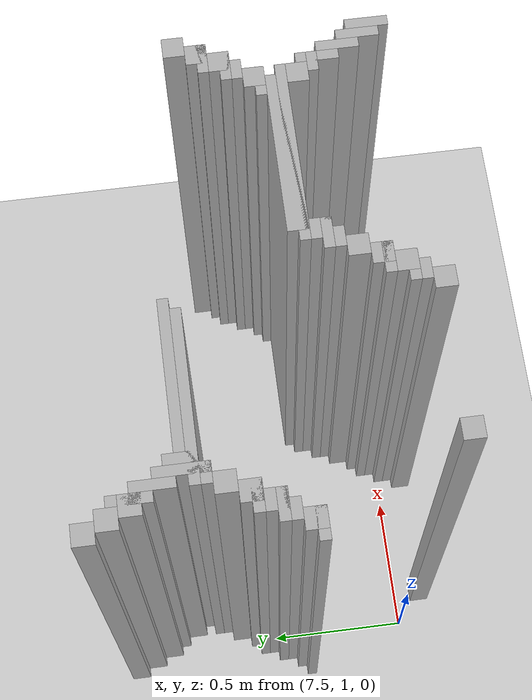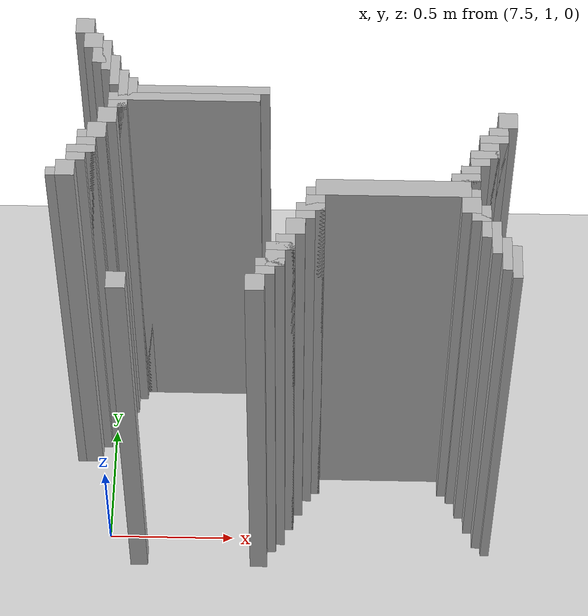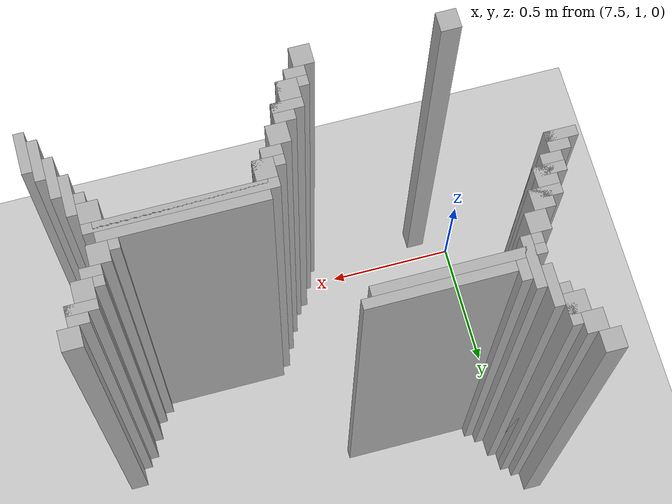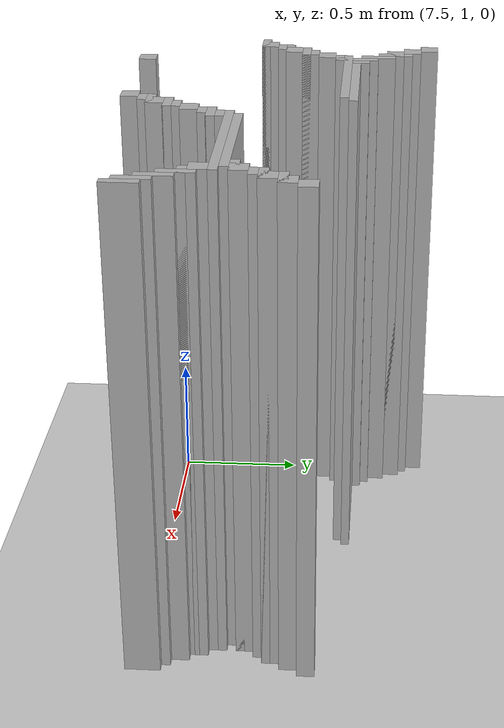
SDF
<sdf version="1.6">
 <world name="slam_world">
  <model name="ground_plane">
   <static>true</static>
   <link name="link">
    <collision name="collision">
     <geometry><plane><normal>0 0 1</normal><size>100 100</size></plane></geometry>
    </collision>
    <visual name="visual">
     <geometry><plane><normal>0 0 1</normal><size>100 100</size></plane></geometry>
     <material>
      <ambient>0.8 0.8 0.8 1</ambient>
      <diffuse>0.8 0.8 0.8 1</diffuse>
      <specular>0.8 0.8 0.8 1</specular>
     </material>
    </visual>
   </link>
  </model>
  <model name="wall_5051">
   <static>true</static>
   <pose>7.447795823665893 2.053364269141531 1.0 0 0 0</pose>
   <link name="link">
    <collision name="collision">
     <geometry><box><size>0.06960556844547564 0.06960556844547564 2.0</size></box></geometry>
    </collision>
    <visual name="visual">
     <geometry><box><size>0.06960556844547564 0.06960556844547564 2.0</size></box></geometry>
     <material><ambient>0.5 0.5 0.5 1</ambient><diffuse>0.7 0.7 0.7 1</diffuse></material>
    </visual>
   </link>
  </model>
  <model name="wall_5064">
   <static>true</static>
   <pose>7.48259860788863 1.9837587006960555 1.0 0 0 0</pose>
   <link name="link">
    <collision name="collision">
     <geometry><box><size>0.06960556844547564 0.06960556844547564 2.0</size></box></geometry>
    </collision>
    <visual name="visual">
     <geometry><box><size>0.06960556844547564 0.06960556844547564 2.0</size></box></geometry>
     <material><ambient>0.5 0.5 0.5 1</ambient><diffuse>0.7 0.7 0.7 1</diffuse></material>
    </visual>
   </link>
  </model>
  <model name="wall_5077">
   <static>true</static>
   <pose>7.534802784222737 1.91415313225058 1.0 0 0 0</pose>
   <link name="link">
    <collision name="collision">
     <geometry><box><size>0.03480278422273782 0.13921113689095127 2.0</size></box></geometry>
    </collision>
    <visual name="visual">
     <geometry><box><size>0.03480278422273782 0.13921113689095127 2.0</size></box></geometry>
     <material><ambient>0.5 0.5 0.5 1</ambient><diffuse>0.7 0.7 0.7 1</diffuse></material>
    </visual>
   </link>
  </model>
  <model name="wall_5088">
   <static>true</static>
   <pose>7.517401392111369 1.91415313225058 1.0 0 0 0</pose>
   <link name="link">
    <collision name="collision">
     <geometry><box><size>0.06960556844547564 0.06960556844547564 2.0</size></box></geometry>
    </collision>
    <visual name="visual">
     <geometry><box><size>0.06960556844547564 0.06960556844547564 2.0</size></box></geometry>
     <material><ambient>0.5 0.5 0.5 1</ambient><diffuse>0.7 0.7 0.7 1</diffuse></material>
    </visual>
   </link>
  </model>
  <model name="wall_5100">
   <static>true</static>
   <pose>7.569605568445476 1.8445475638051043 1.0 0 0 0</pose>
   <link name="link">
    <collision name="collision">
     <geometry><box><size>0.03480278422273782 0.13921113689095127 2.0</size></box></geometry>
    </collision>
    <visual name="visual">
     <geometry><box><size>0.03480278422273782 0.13921113689095127 2.0</size></box></geometry>
     <material><ambient>0.5 0.5 0.5 1</ambient><diffuse>0.7 0.7 0.7 1</diffuse></material>
    </visual>
   </link>
  </model>
  <model name="wall_5119">
   <static>true</static>
   <pose>7.604408352668213 1.75754060324826 1.0 0 0 0</pose>
   <link name="link">
    <collision name="collision">
     <geometry><box><size>0.03480278422273782 0.17401392111368907 2.0</size></box></geometry>
    </collision>
    <visual name="visual">
     <geometry><box><size>0.03480278422273782 0.17401392111368907 2.0</size></box></geometry>
     <material><ambient>0.5 0.5 0.5 1</ambient><diffuse>0.7 0.7 0.7 1</diffuse></material>
    </visual>
   </link>
  </model>
  <model name="wall_5132">
   <static>true</static>
   <pose>7.6392111368909505 1.75754060324826 1.0 0 0 0</pose>
   <link name="link">
    <collision name="collision">
     <geometry><box><size>0.03480278422273782 0.10440835266821345 2.0</size></box></geometry>
    </collision>
    <visual name="visual">
     <geometry><box><size>0.03480278422273782 0.10440835266821345 2.0</size></box></geometry>
     <material><ambient>0.5 0.5 0.5 1</ambient><diffuse>0.7 0.7 0.7 1</diffuse></material>
    </visual>
   </link>
  </model>
  <model name="wall_5144">
   <static>true</static>
   <pose>7.900232018561485 1.75754060324826 1.0 0 0 0</pose>
   <link name="link">
    <collision name="collision">
     <geometry><box><size>0.4872389791183295 0.03480278422273782 2.0</size></box></geometry>
    </collision>
    <visual name="visual">
     <geometry><box><size>0.4872389791183295 0.03480278422273782 2.0</size></box></geometry>
     <material><ambient>0.5 0.5 0.5 1</ambient><diffuse>0.7 0.7 0.7 1</diffuse></material>
    </visual>
   </link>
  </model>
  <model name="wall_5155">
   <static>true</static>
   <pose>7.830626450116009 1.722737819025522 1.0 0 0 0</pose>
   <link name="link">
    <collision name="collision">
     <geometry><box><size>0.5568445475638051 0.03480278422273782 2.0</size></box></geometry>
    </collision>
    <visual name="visual">
     <geometry><box><size>0.5568445475638051 0.03480278422273782 2.0</size></box></geometry>
     <material><ambient>0.5 0.5 0.5 1</ambient><diffuse>0.7 0.7 0.7 1</diffuse></material>
    </visual>
   </link>
  </model>
  <model name="wall_5169">
   <static>true</static>
   <pose>7.587006960556844 1.6879350348027842 1.0 0 0 0</pose>
   <link name="link">
    <collision name="collision">
     <geometry><box><size>0.06960556844547564 0.03480278422273782 2.0</size></box></geometry>
    </collision>
    <visual name="visual">
     <geometry><box><size>0.06960556844547564 0.03480278422273782 2.0</size></box></geometry>
     <material><ambient>0.5 0.5 0.5 1</ambient><diffuse>0.7 0.7 0.7 1</diffuse></material>
    </visual>
   </link>
  </model>
  <model name="wall_5185">
   <static>true</static>
   <pose>7.552204176334106 1.6357308584686774 1.0 0 0 0</pose>
   <link name="link">
    <collision name="collision">
     <geometry><box><size>0.06960556844547564 0.06960556844547564 2.0</size></box></geometry>
    </collision>
    <visual name="visual">
     <geometry><box><size>0.06960556844547564 0.06960556844547564 2.0</size></box></geometry>
     <material><ambient>0.5 0.5 0.5 1</ambient><diffuse>0.7 0.7 0.7 1</diffuse></material>
    </visual>
   </link>
  </model>
  <model name="wall_5186">
   <static>true</static>
   <pose>9.013921113689095 1.6357308584686774 1.0 0 0 0</pose>
   <link name="link">
    <collision name="collision">
     <geometry><box><size>0.06960556844547564 0.06960556844547564 2.0</size></box></geometry>
    </collision>
    <visual name="visual">
     <geometry><box><size>0.06960556844547564 0.06960556844547564 2.0</size></box></geometry>
     <material><ambient>0.5 0.5 0.5 1</ambient><diffuse>0.7 0.7 0.7 1</diffuse></material>
    </visual>
   </link>
  </model>
  <model name="wall_5201">
   <static>true</static>
   <pose>7.517401392111369 1.5661252900232019 1.0 0 0 0</pose>
   <link name="link">
    <collision name="collision">
     <geometry><box><size>0.06960556844547564 0.06960556844547564 2.0</size></box></geometry>
    </collision>
    <visual name="visual">
     <geometry><box><size>0.06960556844547564 0.06960556844547564 2.0</size></box></geometry>
     <material><ambient>0.5 0.5 0.5 1</ambient><diffuse>0.7 0.7 0.7 1</diffuse></material>
    </visual>
   </link>
  </model>
  <model name="wall_5202">
   <static>true</static>
   <pose>8.979118329466356 1.5661252900232019 1.0 0 0 0</pose>
   <link name="link">
    <collision name="collision">
     <geometry><box><size>0.06960556844547564 0.06960556844547564 2.0</size></box></geometry>
    </collision>
    <visual name="visual">
     <geometry><box><size>0.06960556844547564 0.06960556844547564 2.0</size></box></geometry>
     <material><ambient>0.5 0.5 0.5 1</ambient><diffuse>0.7 0.7 0.7 1</diffuse></material>
    </visual>
   </link>
  </model>
  <model name="wall_5217">
   <static>true</static>
   <pose>7.5 1.548723897911833 1.0 0 0 0</pose>
   <link name="link">
    <collision name="collision">
     <geometry><box><size>0.10440835266821345 0.03480278422273782 2.0</size></box></geometry>
    </collision>
    <visual name="visual">
     <geometry><box><size>0.10440835266821345 0.03480278422273782 2.0</size></box></geometry>
     <material><ambient>0.5 0.5 0.5 1</ambient><diffuse>0.7 0.7 0.7 1</diffuse></material>
    </visual>
   </link>
  </model>
  <model name="wall_5218">
   <static>true</static>
   <pose>8.961716937354987 1.548723897911833 1.0 0 0 0</pose>
   <link name="link">
    <collision name="collision">
     <geometry><box><size>0.10440835266821345 0.03480278422273782 2.0</size></box></geometry>
    </collision>
    <visual name="visual">
     <geometry><box><size>0.10440835266821345 0.03480278422273782 2.0</size></box></geometry>
     <material><ambient>0.5 0.5 0.5 1</ambient><diffuse>0.7 0.7 0.7 1</diffuse></material>
    </visual>
   </link>
  </model>
  <model name="wall_5232">
   <static>true</static>
   <pose>7.48259860788863 1.4965197215777262 1.0 0 0 0</pose>
   <link name="link">
    <collision name="collision">
     <geometry><box><size>0.06960556844547564 0.06960556844547564 2.0</size></box></geometry>
    </collision>
    <visual name="visual">
     <geometry><box><size>0.06960556844547564 0.06960556844547564 2.0</size></box></geometry>
     <material><ambient>0.5 0.5 0.5 1</ambient><diffuse>0.7 0.7 0.7 1</diffuse></material>
    </visual>
   </link>
  </model>
  <model name="wall_5233">
   <static>true</static>
   <pose>8.944315545243619 1.4965197215777262 1.0 0 0 0</pose>
   <link name="link">
    <collision name="collision">
     <geometry><box><size>0.06960556844547564 0.06960556844547564 2.0</size></box></geometry>
    </collision>
    <visual name="visual">
     <geometry><box><size>0.06960556844547564 0.06960556844547564 2.0</size></box></geometry>
     <material><ambient>0.5 0.5 0.5 1</ambient><diffuse>0.7 0.7 0.7 1</diffuse></material>
    </visual>
   </link>
  </model>
  <model name="wall_5246">
   <static>true</static>
   <pose>7.465197215777262 1.4791183294663572 1.0 0 0 0</pose>
   <link name="link">
    <collision name="collision">
     <geometry><box><size>0.10440835266821345 0.03480278422273782 2.0</size></box></geometry>
    </collision>
    <visual name="visual">
     <geometry><box><size>0.10440835266821345 0.03480278422273782 2.0</size></box></geometry>
     <material><ambient>0.5 0.5 0.5 1</ambient><diffuse>0.7 0.7 0.7 1</diffuse></material>
    </visual>
   </link>
  </model>
  <model name="wall_5247">
   <static>true</static>
   <pose>8.92691415313225 1.4791183294663572 1.0 0 0 0</pose>
   <link name="link">
    <collision name="collision">
     <geometry><box><size>0.10440835266821345 0.03480278422273782 2.0</size></box></geometry>
    </collision>
    <visual name="visual">
     <geometry><box><size>0.10440835266821345 0.03480278422273782 2.0</size></box></geometry>
     <material><ambient>0.5 0.5 0.5 1</ambient><diffuse>0.7 0.7 0.7 1</diffuse></material>
    </visual>
   </link>
  </model>
  <model name="wall_5260">
   <static>true</static>
   <pose>7.447795823665893 1.4443155452436194 1.0 0 0 0</pose>
   <link name="link">
    <collision name="collision">
     <geometry><box><size>0.06960556844547564 0.03480278422273782 2.0</size></box></geometry>
    </collision>
    <visual name="visual">
     <geometry><box><size>0.06960556844547564 0.03480278422273782 2.0</size></box></geometry>
     <material><ambient>0.5 0.5 0.5 1</ambient><diffuse>0.7 0.7 0.7 1</diffuse></material>
    </visual>
   </link>
  </model>
  <model name="wall_5261">
   <static>true</static>
   <pose>8.909512761020881 1.4443155452436194 1.0 0 0 0</pose>
   <link name="link">
    <collision name="collision">
     <geometry><box><size>0.06960556844547564 0.03480278422273782 2.0</size></box></geometry>
    </collision>
    <visual name="visual">
     <geometry><box><size>0.06960556844547564 0.03480278422273782 2.0</size></box></geometry>
     <material><ambient>0.5 0.5 0.5 1</ambient><diffuse>0.7 0.7 0.7 1</diffuse></material>
    </visual>
   </link>
  </model>
  <model name="wall_5272">
   <static>true</static>
   <pose>7.412993039443156 1.3921113689095126 1.0 0 0 0</pose>
   <link name="link">
    <collision name="collision">
     <geometry><box><size>0.06960556844547564 0.06960556844547564 2.0</size></box></geometry>
    </collision>
    <visual name="visual">
     <geometry><box><size>0.06960556844547564 0.06960556844547564 2.0</size></box></geometry>
     <material><ambient>0.5 0.5 0.5 1</ambient><diffuse>0.7 0.7 0.7 1</diffuse></material>
    </visual>
   </link>
  </model>
  <model name="wall_5273">
   <static>true</static>
   <pose>8.874709976798144 1.3921113689095126 1.0 0 0 0</pose>
   <link name="link">
    <collision name="collision">
     <geometry><box><size>0.06960556844547564 0.06960556844547564 2.0</size></box></geometry>
    </collision>
    <visual name="visual">
     <geometry><box><size>0.06960556844547564 0.06960556844547564 2.0</size></box></geometry>
     <material><ambient>0.5 0.5 0.5 1</ambient><diffuse>0.7 0.7 0.7 1</diffuse></material>
    </visual>
   </link>
  </model>
  <model name="wall_5286">
   <static>true</static>
   <pose>7.395591647331786 1.3747099767981439 1.0 0 0 0</pose>
   <link name="link">
    <collision name="collision">
     <geometry><box><size>0.10440835266821345 0.03480278422273782 2.0</size></box></geometry>
    </collision>
    <visual name="visual">
     <geometry><box><size>0.10440835266821345 0.03480278422273782 2.0</size></box></geometry>
     <material><ambient>0.5 0.5 0.5 1</ambient><diffuse>0.7 0.7 0.7 1</diffuse></material>
    </visual>
   </link>
  </model>
  <model name="wall_5287">
   <static>true</static>
   <pose>8.857308584686775 1.3747099767981439 1.0 0 0 0</pose>
   <link name="link">
    <collision name="collision">
     <geometry><box><size>0.10440835266821345 0.03480278422273782 2.0</size></box></geometry>
    </collision>
    <visual name="visual">
     <geometry><box><size>0.10440835266821345 0.03480278422273782 2.0</size></box></geometry>
     <material><ambient>0.5 0.5 0.5 1</ambient><diffuse>0.7 0.7 0.7 1</diffuse></material>
    </visual>
   </link>
  </model>
  <model name="wall_5300">
   <static>true</static>
   <pose>8.596287703016241 1.322505800464037 1.0 0 0 0</pose>
   <link name="link">
    <collision name="collision">
     <geometry><box><size>0.5568445475638051 0.06960556844547564 2.0</size></box></geometry>
    </collision>
    <visual name="visual">
     <geometry><box><size>0.5568445475638051 0.06960556844547564 2.0</size></box></geometry>
     <material><ambient>0.5 0.5 0.5 1</ambient><diffuse>0.7 0.7 0.7 1</diffuse></material>
    </visual>
   </link>
  </model>
  <model name="wall_5312">
   <static>true</static>
   <pose>8.596287703016241 1.3051044083526682 1.0 0 0 0</pose>
   <link name="link">
    <collision name="collision">
     <geometry><box><size>0.6264501160092807 0.03480278422273782 2.0</size></box></geometry>
    </collision>
    <visual name="visual">
     <geometry><box><size>0.6264501160092807 0.03480278422273782 2.0</size></box></geometry>
     <material><ambient>0.5 0.5 0.5 1</ambient><diffuse>0.7 0.7 0.7 1</diffuse></material>
    </visual>
   </link>
  </model>
  <model name="wall_5324">
   <static>true</static>
   <pose>8.317865429234338 1.2529002320185614 1.0 0 0 0</pose>
   <link name="link">
    <collision name="collision">
     <geometry><box><size>0.06960556844547564 0.06960556844547564 2.0</size></box></geometry>
    </collision>
    <visual name="visual">
     <geometry><box><size>0.06960556844547564 0.06960556844547564 2.0</size></box></geometry>
     <material><ambient>0.5 0.5 0.5 1</ambient><diffuse>0.7 0.7 0.7 1</diffuse></material>
    </visual>
   </link>
  </model>
  <model name="wall_5325">
   <static>true</static>
   <pose>8.874709976798144 1.2529002320185614 1.0 0 0 0</pose>
   <link name="link">
    <collision name="collision">
     <geometry><box><size>0.06960556844547564 0.06960556844547564 2.0</size></box></geometry>
    </collision>
    <visual name="visual">
     <geometry><box><size>0.06960556844547564 0.06960556844547564 2.0</size></box></geometry>
     <material><ambient>0.5 0.5 0.5 1</ambient><diffuse>0.7 0.7 0.7 1</diffuse></material>
    </visual>
   </link>
  </model>
  <model name="wall_5338">
   <static>true</static>
   <pose>8.30046403712297 1.2354988399071924 1.0 0 0 0</pose>
   <link name="link">
    <collision name="collision">
     <geometry><box><size>0.10440835266821345 0.03480278422273782 2.0</size></box></geometry>
    </collision>
    <visual name="visual">
     <geometry><box><size>0.10440835266821345 0.03480278422273782 2.0</size></box></geometry>
     <material><ambient>0.5 0.5 0.5 1</ambient><diffuse>0.7 0.7 0.7 1</diffuse></material>
    </visual>
   </link>
  </model>
  <model name="wall_5339">
   <static>true</static>
   <pose>8.92691415313225 1.1832946635730859 1.0 0 0 0</pose>
   <link name="link">
    <collision name="collision">
     <geometry><box><size>0.03480278422273782 0.13921113689095127 2.0</size></box></geometry>
    </collision>
    <visual name="visual">
     <geometry><box><size>0.03480278422273782 0.13921113689095127 2.0</size></box></geometry>
     <material><ambient>0.5 0.5 0.5 1</ambient><diffuse>0.7 0.7 0.7 1</diffuse></material>
    </visual>
   </link>
  </model>
  <model name="wall_5349">
   <static>true</static>
   <pose>8.2830626450116 1.2006960556844548 1.0 0 0 0</pose>
   <link name="link">
    <collision name="collision">
     <geometry><box><size>0.06960556844547564 0.03480278422273782 2.0</size></box></geometry>
    </collision>
    <visual name="visual">
     <geometry><box><size>0.06960556844547564 0.03480278422273782 2.0</size></box></geometry>
     <material><ambient>0.5 0.5 0.5 1</ambient><diffuse>0.7 0.7 0.7 1</diffuse></material>
    </visual>
   </link>
  </model>
  <model name="wall_5350">
   <static>true</static>
   <pose>8.909512761020881 1.2006960556844548 1.0 0 0 0</pose>
   <link name="link">
    <collision name="collision">
     <geometry><box><size>0.06960556844547564 0.03480278422273782 2.0</size></box></geometry>
    </collision>
    <visual name="visual">
     <geometry><box><size>0.06960556844547564 0.03480278422273782 2.0</size></box></geometry>
     <material><ambient>0.5 0.5 0.5 1</ambient><diffuse>0.7 0.7 0.7 1</diffuse></material>
    </visual>
   </link>
  </model>
  <model name="wall_5361">
   <static>true</static>
   <pose>8.248259860788863 1.148491879350348 1.0 0 0 0</pose>
   <link name="link">
    <collision name="collision">
     <geometry><box><size>0.06960556844547564 0.06960556844547564 2.0</size></box></geometry>
    </collision>
    <visual name="visual">
     <geometry><box><size>0.06960556844547564 0.06960556844547564 2.0</size></box></geometry>
     <material><ambient>0.5 0.5 0.5 1</ambient><diffuse>0.7 0.7 0.7 1</diffuse></material>
    </visual>
   </link>
  </model>
  <model name="wall_5362">
   <static>true</static>
   <pose>8.961716937354987 1.1136890951276102 1.0 0 0 0</pose>
   <link name="link">
    <collision name="collision">
     <geometry><box><size>0.03480278422273782 0.13921113689095127 2.0</size></box></geometry>
    </collision>
    <visual name="visual">
     <geometry><box><size>0.03480278422273782 0.13921113689095127 2.0</size></box></geometry>
     <material><ambient>0.5 0.5 0.5 1</ambient><diffuse>0.7 0.7 0.7 1</diffuse></material>
    </visual>
   </link>
  </model>
  <model name="wall_5375">
   <static>true</static>
   <pose>8.213457076566124 1.0788863109048723 1.0 0 0 0</pose>
   <link name="link">
    <collision name="collision">
     <geometry><box><size>0.06960556844547564 0.06960556844547564 2.0</size></box></geometry>
    </collision>
    <visual name="visual">
     <geometry><box><size>0.06960556844547564 0.06960556844547564 2.0</size></box></geometry>
     <material><ambient>0.5 0.5 0.5 1</ambient><diffuse>0.7 0.7 0.7 1</diffuse></material>
    </visual>
   </link>
  </model>
  <model name="wall_5376">
   <static>true</static>
   <pose>8.996519721577727 1.0440835266821344 1.0 0 0 0</pose>
   <link name="link">
    <collision name="collision">
     <geometry><box><size>0.03480278422273782 0.13921113689095127 2.0</size></box></geometry>
    </collision>
    <visual name="visual">
     <geometry><box><size>0.03480278422273782 0.13921113689095127 2.0</size></box></geometry>
     <material><ambient>0.5 0.5 0.5 1</ambient><diffuse>0.7 0.7 0.7 1</diffuse></material>
    </visual>
   </link>
  </model>
  <model name="wall_5389">
   <static>true</static>
   <pose>8.196055684454755 1.0614849187935034 1.0 0 0 0</pose>
   <link name="link">
    <collision name="collision">
     <geometry><box><size>0.10440835266821345 0.03480278422273782 2.0</size></box></geometry>
    </collision>
    <visual name="visual">
     <geometry><box><size>0.10440835266821345 0.03480278422273782 2.0</size></box></geometry>
     <material><ambient>0.5 0.5 0.5 1</ambient><diffuse>0.7 0.7 0.7 1</diffuse></material>
    </visual>
   </link>
  </model>
  <model name="wall_5390">
   <static>true</static>
   <pose>9.031322505800464 1.0092807424593968 1.0 0 0 0</pose>
   <link name="link">
    <collision name="collision">
     <geometry><box><size>0.03480278422273782 0.13921113689095127 2.0</size></box></geometry>
    </collision>
    <visual name="visual">
     <geometry><box><size>0.03480278422273782 0.13921113689095127 2.0</size></box></geometry>
     <material><ambient>0.5 0.5 0.5 1</ambient><diffuse>0.7 0.7 0.7 1</diffuse></material>
    </visual>
   </link>
  </model>
  <model name="wall_5399">
   <static>true</static>
   <pose>8.178654292343387 1.0092807424593968 1.0 0 0 0</pose>
   <link name="link">
    <collision name="collision">
     <geometry><box><size>0.06960556844547564 0.06960556844547564 2.0</size></box></geometry>
    </collision>
    <visual name="visual">
     <geometry><box><size>0.06960556844547564 0.06960556844547564 2.0</size></box></geometry>
     <material><ambient>0.5 0.5 0.5 1</ambient><diffuse>0.7 0.7 0.7 1</diffuse></material>
    </visual>
   </link>
  </model>
  <model name="wall_5409">
   <static>true</static>
   <pose>8.161252900232018 0.9918793503480278 1.0 0 0 0</pose>
   <link name="link">
    <collision name="collision">
     <geometry><box><size>0.10440835266821345 0.03480278422273782 2.0</size></box></geometry>
    </collision>
    <visual name="visual">
     <geometry><box><size>0.10440835266821345 0.03480278422273782 2.0</size></box></geometry>
     <material><ambient>0.5 0.5 0.5 1</ambient><diffuse>0.7 0.7 0.7 1</diffuse></material>
    </visual>
   </link>
  </model>
  <model name="wall_5419">
   <static>true</static>
   <pose>8.14385150812065 0.95707656612529 1.0 0 0 0</pose>
   <link name="link">
    <collision name="collision">
     <geometry><box><size>0.06960556844547564 0.03480278422273782 2.0</size></box></geometry>
    </collision>
    <visual name="visual">
     <geometry><box><size>0.06960556844547564 0.03480278422273782 2.0</size></box></geometry>
     <material><ambient>0.5 0.5 0.5 1</ambient><diffuse>0.7 0.7 0.7 1</diffuse></material>
    </visual>
   </link>
  </model>
  <model name="wall_5428">
   <static>true</static>
   <pose>7.621809744779582 0.9048723897911832 1.0 0 0 0</pose>
   <link name="link">
    <collision name="collision">
     <geometry><box><size>0.06960556844547564 0.06960556844547564 2.0</size></box></geometry>
    </collision>
    <visual name="visual">
     <geometry><box><size>0.06960556844547564 0.06960556844547564 2.0</size></box></geometry>
     <material><ambient>0.5 0.5 0.5 1</ambient><diffuse>0.7 0.7 0.7 1</diffuse></material>
    </visual>
   </link>
  </model>
  <model name="wall_5429">
   <static>true</static>
   <pose>8.109048723897912 0.9048723897911832 1.0 0 0 0</pose>
   <link name="link">
    <collision name="collision">
     <geometry><box><size>0.06960556844547564 0.06960556844547564 2.0</size></box></geometry>
    </collision>
    <visual name="visual">
     <geometry><box><size>0.06960556844547564 0.06960556844547564 2.0</size></box></geometry>
     <material><ambient>0.5 0.5 0.5 1</ambient><diffuse>0.7 0.7 0.7 1</diffuse></material>
    </visual>
   </link>
  </model>
 </world>
</sdf>
